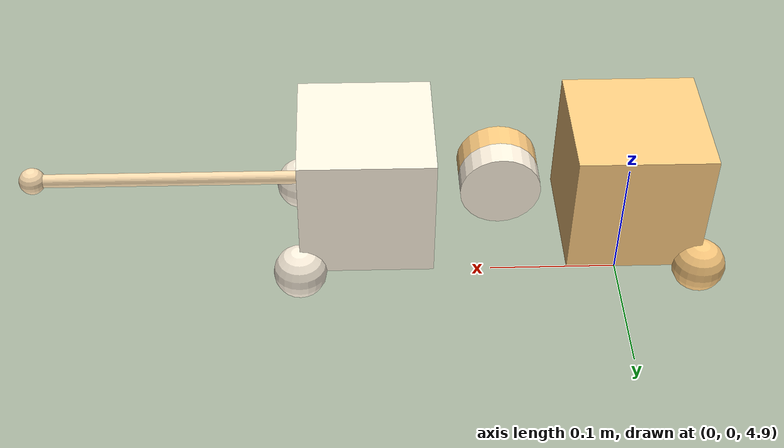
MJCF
<mujoco model="cat">
  <compiler angle="radian" autolimits="true"/>
  <option timestep="0.001">
    <flag contact="disable"/>
  </option>

  <asset>
    <material name="grey" rgba="0.5 0.5 0.5 1"/>
    <material name="color1" rgba="1 0.8 0.5 1"/>
    <material name="color2" rgba="1 0.878 0.698 1"/>
    <material name="color3" rgba="1 0.953 0.878 1"/>
  </asset>

  <worldbody>
    <light directional="true" diffuse=".8 .8 .8" pos="0 0 10" dir="0 0 -1"/>

    <geom name="floor" type="plane" size="0 0 0.05" material="grey"/>
    <body name="front_body" pos="0 0 5" euler="0 0 0">
      <freejoint name="root"/>
      <!-- 663g body + 100g battery (TODO: measure battery mass) -->
      <inertial pos="0 0 0" mass="0.763" diaginertia="0.0012717 0.0012717 0.0012717"/>
      <geom type="box" size="0.05 0.05 0.05" material="color1"/>
      <geom name="front_paw1" type="sphere" size="0.02" pos="-0.05 0.05 -0.05" mass="0" material="color1"/>
      <geom name="front_paw2" type="sphere" size="0.02" pos="-0.05 -0.05 -0.05" mass="0" material="color1"/>

      <body name="spine_1" pos="0.1 0 0">
        <joint name="rot1" type="hinge" axis="1 0 0" range="-7.28 7.28" damping="0.00197" frictionloss="0.005" armature="0.00015"/>
        <!-- spine 147g total, split evenly across spine_1 / spine_2 -->
        <inertial pos="0 0 0" mass="0.0735" diaginertia="0.0000190 0.0000331 0.0000190"/>
        <geom type="cylinder" size="0.03 0.01" pos="0 -0.01 0" euler="1.5708 0 0" material="color1"/>

        <body name="spine_2" pos="0.0 0 0">
          <joint name="pitch" type="hinge" axis="0 1 0" range="-1.57 1.57" damping="0.034" frictionloss="0.033" armature="0.003" />
          <inertial pos="0 0 0" mass="0.0735" diaginertia="0.0000190 0.0000331 0.0000190"/>
          <geom type="cylinder" size="0.03 0.01" pos="0 0.01 0" euler="1.5708 0 0" material="color3"/>

          <body name="rear_body" pos="0.1 0 0">
            <joint name="rot2" type="hinge" axis="1 0 0" range="-7.28 7.28" damping="0.00197" frictionloss="0.005" armature="0.00015"/>
            <inertial pos="0 0 0" mass="0.723" diaginertia="0.0012050 0.0012050 0.0012050"/>
            <geom type="box" size="0.05 0.05 0.05" material="color3"/>
            <geom name="rear_paw1" type="sphere" size="0.02" pos="0.05 0.05 -0.05" mass="0" material="color3"/>
            <geom name="rear_paw2" type="sphere" size="0.02" pos="0.05 -0.05 -0.05" mass="0" material="color3"/>

            <body name="tail" pos="0.05 0 0">
              <joint name="tail" type="hinge" axis="0 1 0" range="-1.9199 1.9199" damping="0.034" frictionloss="0.033" armature="0.003"/>
              <!-- 150g concentrated at the tail tip (pos 0.2) -->
              <inertial pos="0.2 0 0" mass="0.150" diaginertia="1e-6 1e-6 1e-6"/>
              <geom type="cylinder" size="0.005 0.1" pos="0.1 0 0" euler="0 1.5708 0" mass="0" material="color2"/>
              <geom type="sphere" size="0.01" pos="0.2 0 0" mass="0" material="color2"/>
            </body>

          </body>
        </body>
      </body>
    </body>
  </worldbody>

  <actuator>
    <motor name="motor1" joint="rot1" ctrllimited="true" ctrlrange="-0.17 0.17"/>
    <motor name="motor2" joint="pitch" ctrllimited="true" ctrlrange="-1.1 1.1"/>
    <motor name="motor3" joint="rot2" ctrllimited="true" ctrlrange="-0.17 0.17"/>
    <motor name="motor4" joint="tail" ctrllimited="true" ctrlrange="-1.1 1.1"/>
  </actuator>

</mujoco>
